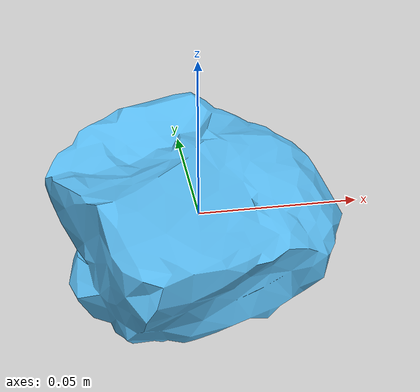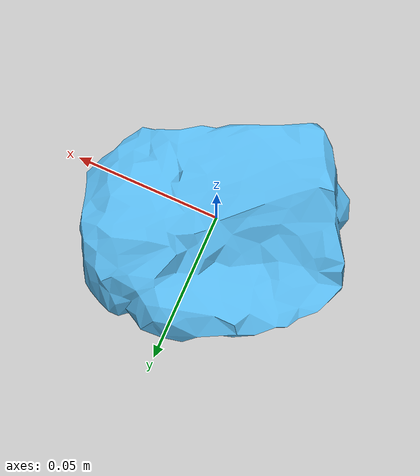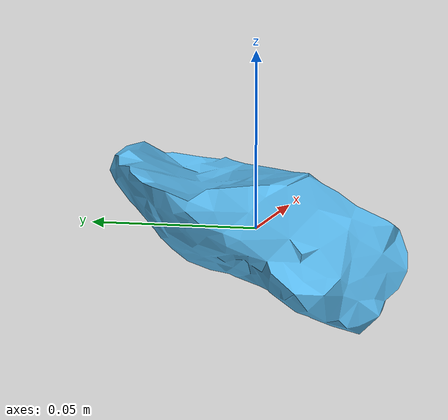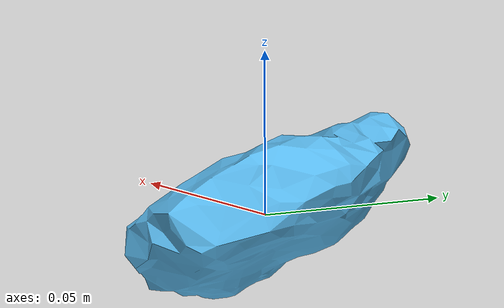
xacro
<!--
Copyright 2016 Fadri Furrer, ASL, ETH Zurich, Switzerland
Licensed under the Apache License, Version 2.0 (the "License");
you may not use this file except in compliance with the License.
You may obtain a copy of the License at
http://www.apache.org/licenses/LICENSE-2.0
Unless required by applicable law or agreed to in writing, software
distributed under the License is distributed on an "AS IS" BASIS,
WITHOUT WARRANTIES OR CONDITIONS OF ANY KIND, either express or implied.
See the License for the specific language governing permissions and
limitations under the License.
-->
<?xml version="1.0"?>

<robot name="stone_5" xmlns:xacro="http://ros.org/wiki/xacro">
<xacro:property name="mesh_file" value="package://urdf_models/models/stone_5/mesh/stone_5.stl" />
  <xacro:property name="mass" value="1.0" />
  <link name="base_link"></link>

  <joint name="base_joint" type="fixed">
    <origin xyz="0 0 0" rpy="0 0 0" />
    <parent link="base_link" />
    <child link="base_link_inertia" />
  </joint>

  <link name="base_link_inertia">
  <inertial>
    <mass value="${mass}" />  <!-- [kg] -->
    <origin xyz="0.000209e-1 0.000129e-1 0.000045e-1" />
    <inertia ixx="0.005520e-02" ixy="-0.001326e-02" ixz="0.000610e-02"
                                iyy="0.006123e-02"  iyz="-0.001059e-02"
                                                    izz="0.009342e-02" />
   </inertial>

      <visual>
        <origin xyz="0 0 0" rpy="0 0 0" />
        <geometry>
          <mesh filename="${mesh_file}" scale="1 1 1" />
        </geometry>
      </visual>

      <collision>
        <origin xyz="0 0 0" rpy="0 0 0" />
        <geometry>
          <mesh filename="${mesh_file}" scale="1 1 1" />
        </geometry>
      </collision>
    </link>

    <gazebo reference="base_link">
        <mu1 value="0.1"/>
        <mu2 value="0.1"/>
        <kp  value="5000000.0" />
        <kd  value="1.0" />
        <fdir1 value="1 0 0"/>
        <collision>
            <surface>
              <bounce>
                <restitution_coefficient> 0.1 </restitution_coefficient>
                <threshold>0.</threshold>
              </bounce>
            <contact>
                <ode>
                  <max_vel>10</max_vel>
                  <min_depth>0.001</min_depth>
                </ode>
            </contact>
            </surface>
       </collision>
        <material name="Gray">
        <color rgba="0.8 0.8 0.8 1"/>
      </material>
        <turnGravityOff>false</turnGravityOff>
    </gazebo>

</robot>
